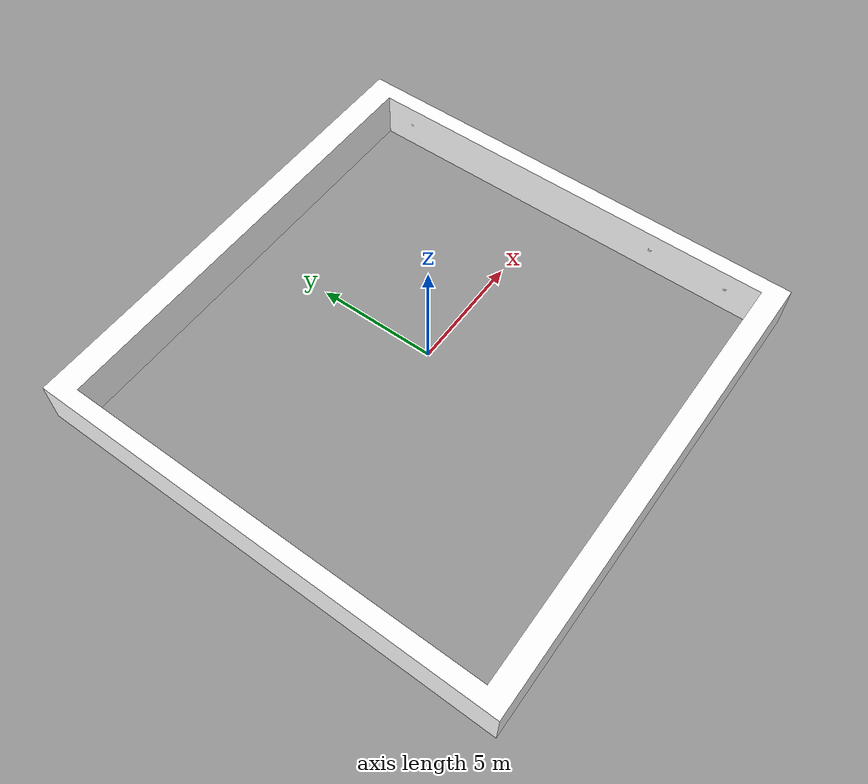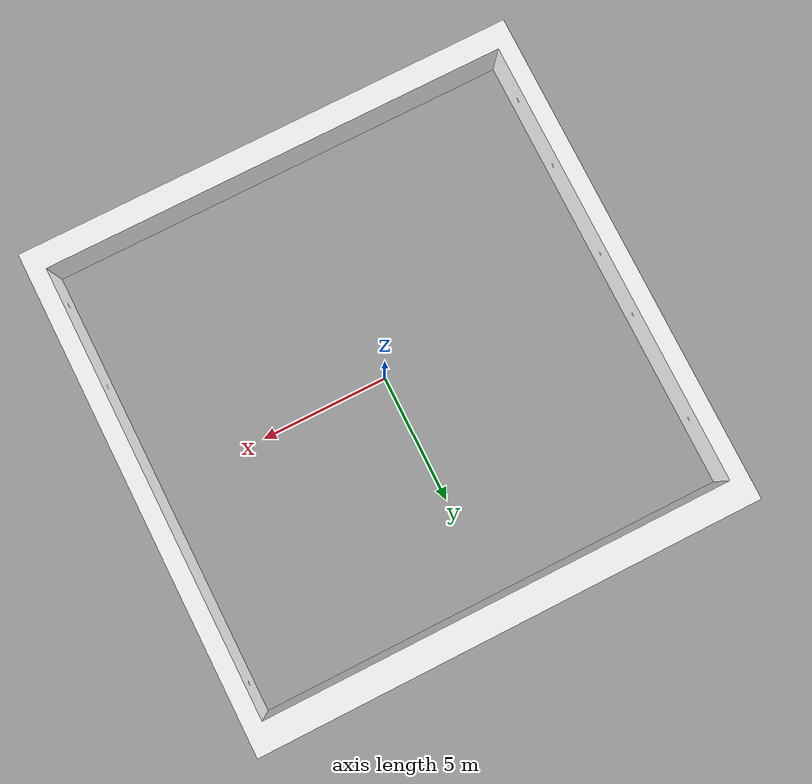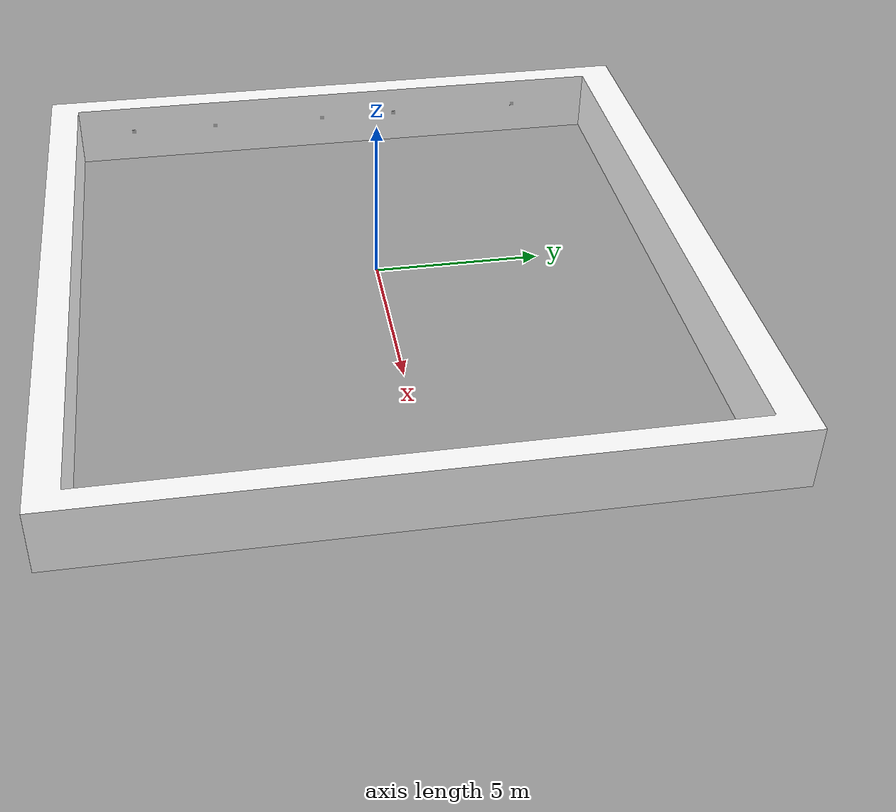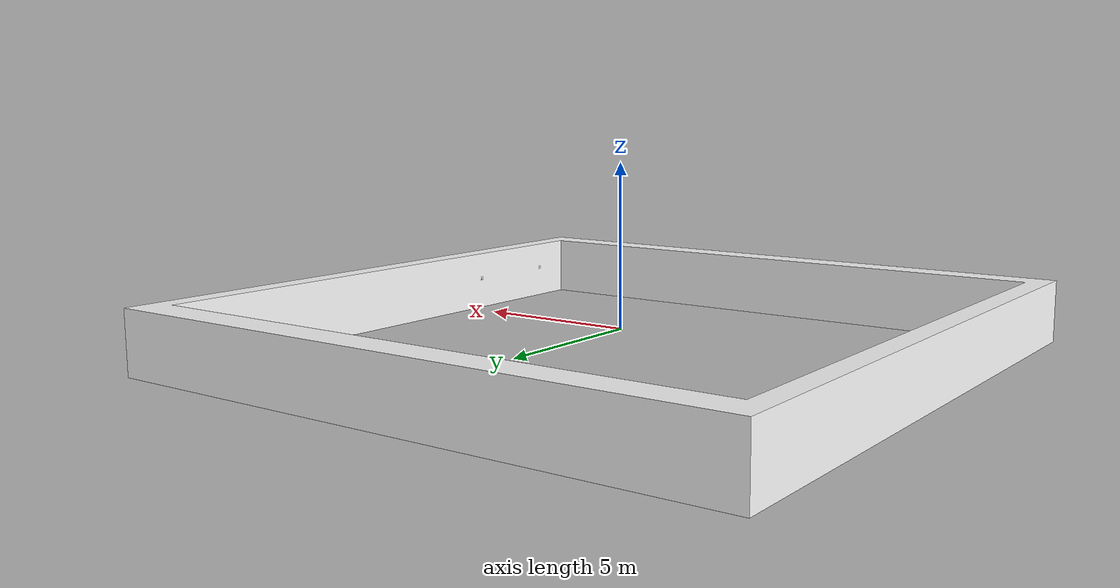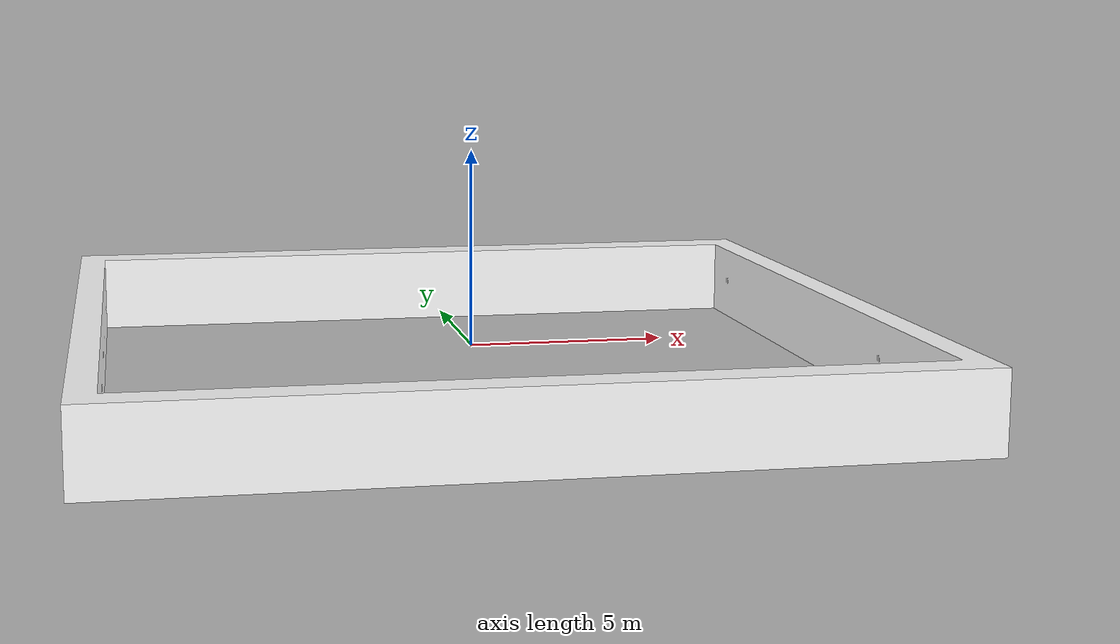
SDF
<?xml version="1.0" ?>
<sdf version="1.4">
  <model name="qr_room">
    <link name="link">
      <inertial>
        <mass>15</mass>
        <inertia>
          <ixx>0.0</ixx>
          <ixy>0.0</ixy>
          <ixz>0.0</ixz>
          <iyy>0.0</iyy>
          <iyz>0.0</iyz>
          <izz>0.1</izz>
        </inertia>
      </inertial>
      <collision name="collision">
        <pose>-10 -10 -0.9 0 0 0</pose>
        <geometry>
          <mesh>
            <uri>model://ar_room/meshes/ar.dae</uri>
          </mesh>
        </geometry>
        <surface>
          <contact>
            <ode>
              <kp>1e+05</kp>
              <kd>0</kd>
            </ode>
          </contact>
          <friction>
            <ode>
              <mu>100.0</mu>
              <mu2>50.0</mu2>
            </ode>
          </friction>
        </surface>
      </collision>
      <visual name="visual">
        <pose>-10 -10 -0.9 0 0 0</pose>
        <geometry>
          <mesh>
            <uri>model://ar_room/meshes/ar.dae</uri>
          </mesh>
        </geometry>

      </visual>
    </link>
    <static>1</static>
  </model>
</sdf>
